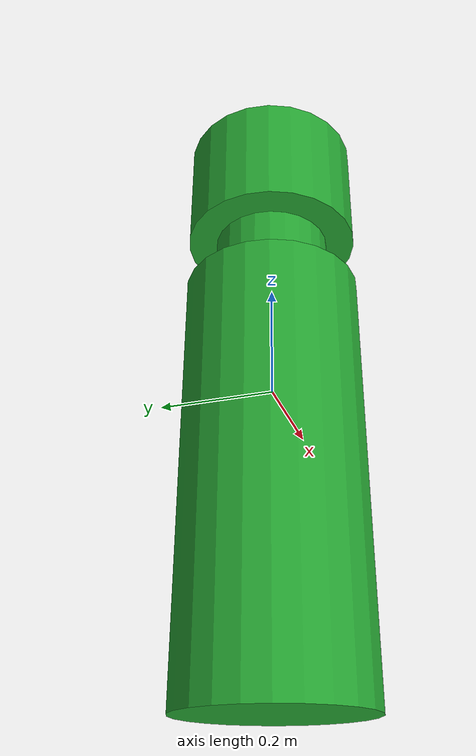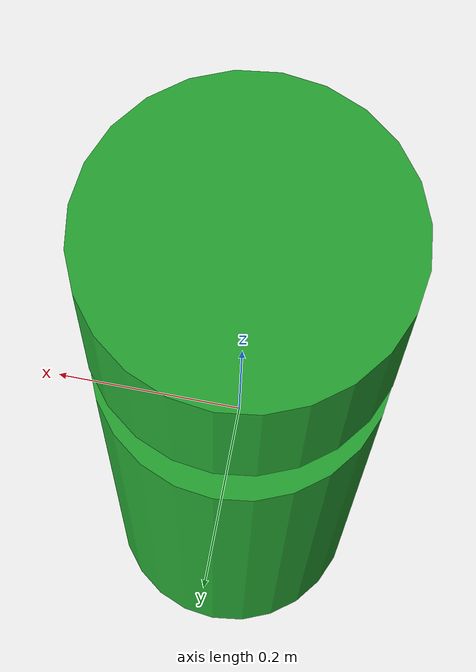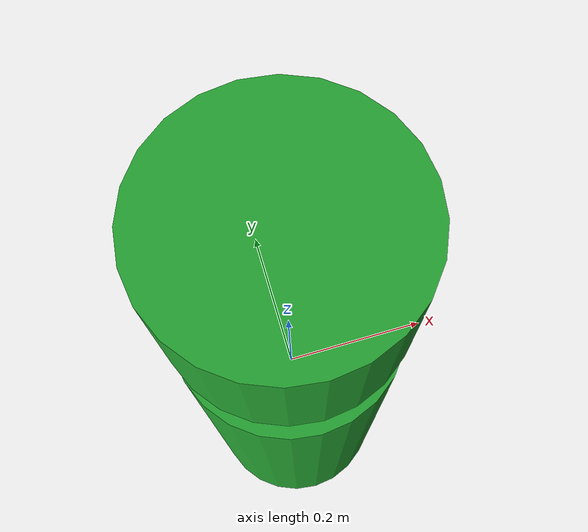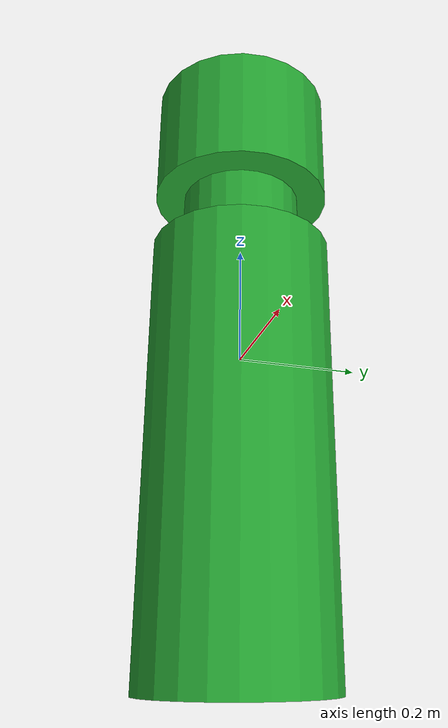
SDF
<?xml version='1.0'?>
<sdf version='1.6'>
  <model name='object_can_03'>
    <static>false</static>
    <link name='object_can'>

      <collision name='body_collision'>
        <geometry>
          <cylinder>
            <radius>0.15</radius>
            <length>1.0</length>
          </cylinder>
        </geometry>
      </collision>

      <inertial>
        <mass>1</mass>
        <pose frame=''>0 0 0 0 -0 0</pose>
      </inertial>

      <visual name='body'>
        <pose frame=''>0 0 -0.15 0 -0 0</pose>
        <geometry>
          <cylinder>
            <radius>0.15</radius>
            <length>0.7</length>
          </cylinder>
        </geometry>
        <material>
          <lighting>1</lighting>
          <script>
            <uri>file://media/materials/scripts/gazebo.material</uri>
            <name>Gazebo/Green</name>
          </script>
        </material>
        <transparency>0</transparency>
        <cast_shadows>1</cast_shadows>
      </visual>

      <visual name='eye'>
        <pose frame=''>0 0 0.25 0 -0 0</pose>
        <geometry>
          <cylinder>
            <radius>0.1</radius>
            <length>0.1</length>
          </cylinder>
        </geometry>
        <material>
          <lighting>1</lighting>
          <script>
            <uri>file://media/materials/scripts/gazebo.material</uri>
            <name>Gazebo/Green</name>
          </script>
        </material>
        <transparency>0</transparency>
        <cast_shadows>1</cast_shadows>
      </visual>

      <visual name='top'>
        <pose frame=''>0 0 0.4 0 -0 0</pose>
        <geometry>
          <cylinder>
            <radius>0.15</radius>
            <length>0.2</length>
          </cylinder>
        </geometry>
        <material>
          <lighting>1</lighting>
          <script>
            <uri>file://media/materials/scripts/gazebo.material</uri>
            <name>Gazebo/Green</name>
          </script>
        </material>
        <transparency>0</transparency>
        <cast_shadows>1</cast_shadows>
      </visual>
    </link>
  </model>
</sdf>
